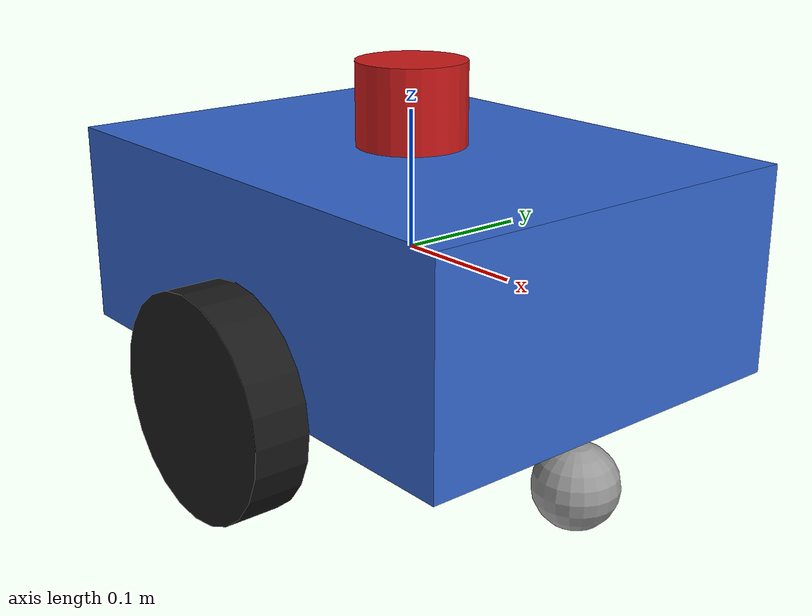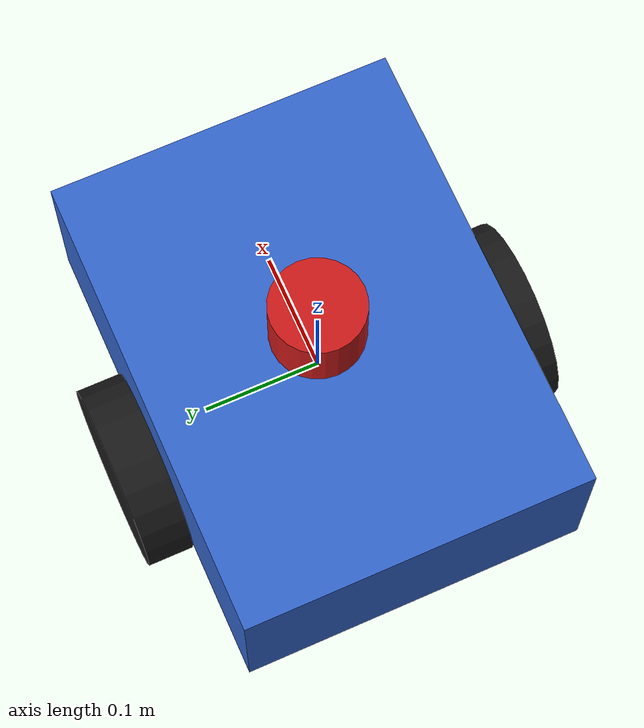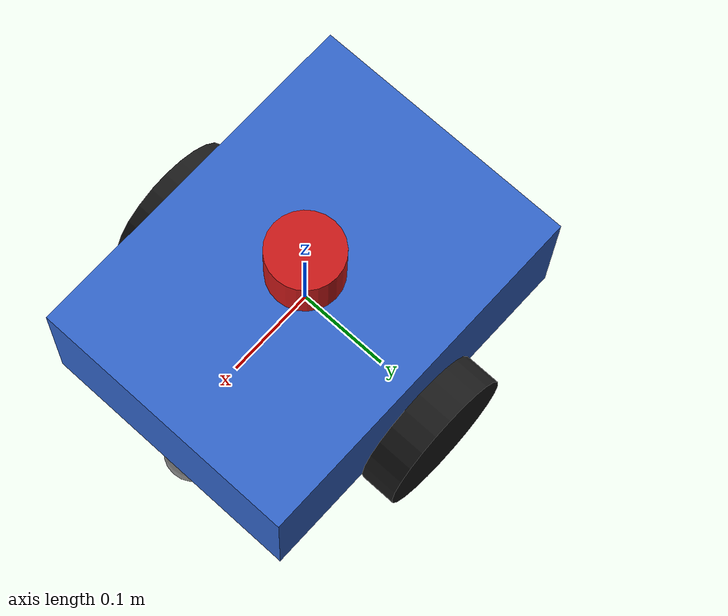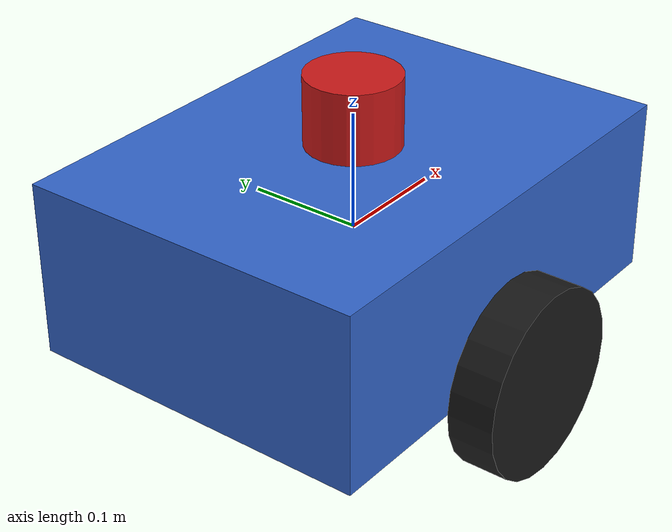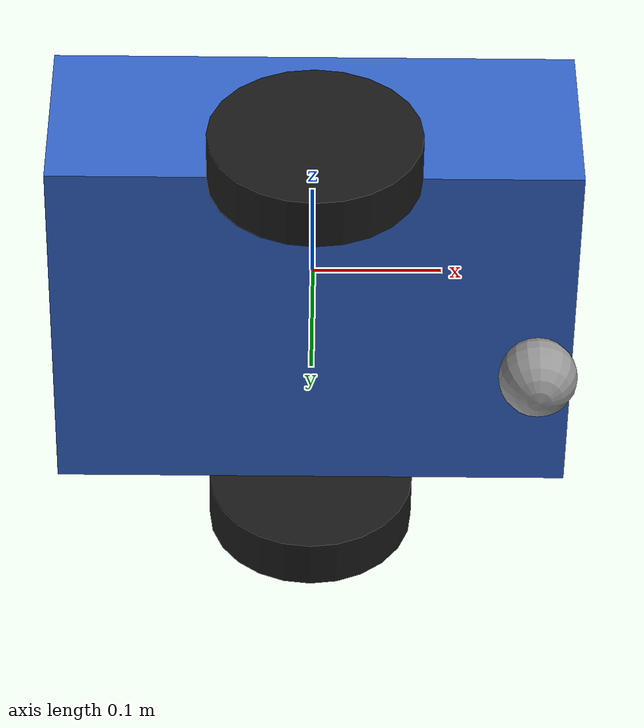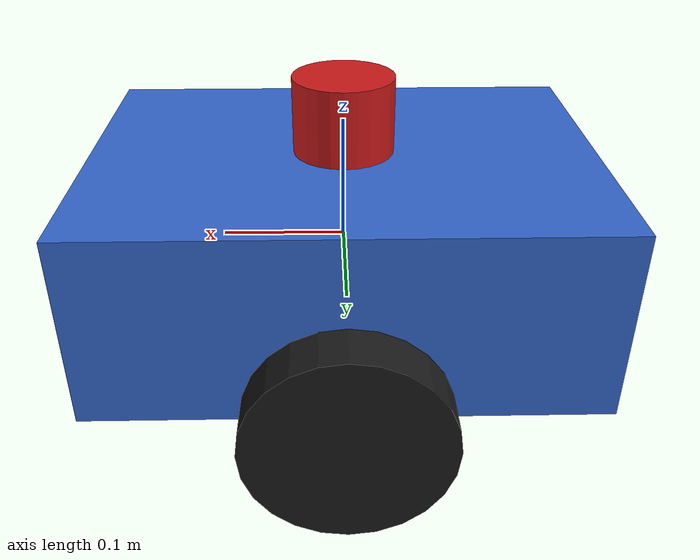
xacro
<?xml version="1.0"?>
<robot name="amr_bot" xmlns:xacro="http://www.ros.org/wiki/xacro">

  <!-- ==================== ROBOT DIMENSIONS ==================== -->
  <!-- Think of these like variables in Python — define once, use everywhere -->
  <xacro:property name="base_length"     value="0.4"/>   <!-- metres -->
  <xacro:property name="base_width"      value="0.3"/>
  <xacro:property name="base_height"     value="0.15"/>
  <xacro:property name="wheel_radius"    value="0.08"/>
  <xacro:property name="wheel_thickness" value="0.04"/>
  <xacro:property name="caster_radius"   value="0.03"/>
  <xacro:property name="robot_mass"      value="10.0"/>   <!-- kg -->
  <xacro:property name="wheel_mass"      value="0.5"/>

  <!-- ==================== BASE LINK ==================== -->
  <!-- This is the main robot body — everything connects to this -->
  <link name="base_link">

    <visual>
      <geometry>
        <box size="${base_length} ${base_width} ${base_height}"/>
      </geometry>
      <material name="blue">
        <color rgba="0.2 0.4 0.8 1.0"/>
      </material>
    </visual>

    <collision>
      <geometry>
        <box size="${base_length} ${base_width} ${base_height}"/>
      </geometry>
    </collision>

    <inertial>
      <mass value="${robot_mass}"/>
      <inertia
        ixx="${(1/12) * robot_mass * (base_width*base_width + base_height*base_height)}"
        iyy="${(1/12) * robot_mass * (base_length*base_length + base_height*base_height)}"
        izz="${(1/12) * robot_mass * (base_length*base_length + base_width*base_width)}"
        ixy="0" ixz="0" iyz="0"/>
    </inertial>

  </link>

  <!-- ==================== LEFT WHEEL ==================== -->
  <link name="left_wheel">
    <visual>
      <geometry>
        <cylinder radius="${wheel_radius}" length="${wheel_thickness}"/>
      </geometry>
      <material name="black">
        <color rgba="0.1 0.1 0.1 1.0"/>
      </material>
    </visual>
    <collision>
      <geometry>
        <cylinder radius="${wheel_radius}" length="${wheel_thickness}"/>
      </geometry>
    </collision>
    <inertial>
      <mass value="${wheel_mass}"/>
      <inertia
        ixx="${(1/12) * wheel_mass * (3*wheel_radius*wheel_radius + wheel_thickness*wheel_thickness)}"
        iyy="${(1/12) * wheel_mass * (3*wheel_radius*wheel_radius + wheel_thickness*wheel_thickness)}"
        izz="${(1/2) * wheel_mass * wheel_radius*wheel_radius}"
        ixy="0" ixz="0" iyz="0"/>
    </inertial>
  </link>

  <!-- Left wheel joint — continuous means it spins freely -->
  <joint name="left_wheel_joint" type="continuous">
    <parent link="base_link"/>
    <child  link="left_wheel"/>
    <!-- Position: halfway back, left side, at wheel height -->
    <origin xyz="0.0 ${base_width/2 + wheel_thickness/2} ${-base_height/2}" rpy="-1.5708 0 0"/>
    <axis xyz="0 0 1"/>
  </joint>

  <!-- ==================== RIGHT WHEEL ==================== -->
  <link name="right_wheel">
    <visual>
      <geometry>
        <cylinder radius="${wheel_radius}" length="${wheel_thickness}"/>
      </geometry>
      <material name="black">
        <color rgba="0.1 0.1 0.1 1.0"/>
      </material>
    </visual>
    <collision>
      <geometry>
        <cylinder radius="${wheel_radius}" length="${wheel_thickness}"/>
      </geometry>
    </collision>
    <inertial>
      <mass value="${wheel_mass}"/>
      <inertia
        ixx="${(1/12) * wheel_mass * (3*wheel_radius*wheel_radius + wheel_thickness*wheel_thickness)}"
        iyy="${(1/12) * wheel_mass * (3*wheel_radius*wheel_radius + wheel_thickness*wheel_thickness)}"
        izz="${(1/2) * wheel_mass * wheel_radius*wheel_radius}"
        ixy="0" ixz="0" iyz="0"/>
    </inertial>
  </link>

  <joint name="right_wheel_joint" type="continuous">
    <parent link="base_link"/>
    <child  link="right_wheel"/>
    <!-- Mirror of left wheel — negative Y side -->
    <origin xyz="0.0 ${-(base_width/2 + wheel_thickness/2)} ${-base_height/2}" rpy="-1.5708 0 0"/>
    <axis xyz="0 0 1"/>
  </joint>

  <!-- ==================== CASTER WHEEL ==================== -->
  <!-- Passive wheel — no motor, just supports the front of the robot -->
  <link name="caster_wheel">
    <visual>
      <geometry>
        <sphere radius="${caster_radius}"/>
      </geometry>
      <material name="grey">
        <color rgba="0.6 0.6 0.6 1.0"/>
      </material>
    </visual>
    <collision>
      <geometry>
        <sphere radius="${caster_radius}"/>
      </geometry>
    </collision>
    <inertial>
      <mass value="0.1"/>
      <inertia
        ixx="${(2/5) * 0.1 * caster_radius*caster_radius}"
        iyy="${(2/5) * 0.1 * caster_radius*caster_radius}"
        izz="${(2/5) * 0.1 * caster_radius*caster_radius}"
        ixy="0" ixz="0" iyz="0"/>
    </inertial>
  </link>

  <!-- Fixed joint — caster doesn't move relative to base -->
  <!-- Fixed joint — caster doesn't move relative to base -->
  <joint name="caster_joint" type="fixed">
      <parent link="base_link"/>
      <child  link="caster_wheel"/>
      <origin xyz="${base_length/2 - caster_radius} 0
          ${-base_height/2 - (wheel_radius - caster_radius)}" rpy="0 0 0"/>
  </joint>

  <!-- ==================== LIDAR ==================== -->
  <link name="lidar_link">
    <visual>
      <geometry>
        <cylinder radius="0.04" length="0.06"/>
      </geometry>
      <material name="red">
        <color rgba="0.8 0.1 0.1 1.0"/>
      </material>
    </visual>
    <collision>
      <geometry>
        <cylinder radius="0.04" length="0.06"/>
      </geometry>
    </collision>
    <inertial>
      <mass value="0.2"/>
      <inertia ixx="0.001" iyy="0.001" izz="0.001"
               ixy="0" ixz="0" iyz="0"/>
    </inertial>
  </link>

  <!-- Fixed joint — LiDAR sits on top of robot body -->
  <joint name="lidar_joint" type="fixed">
    <parent link="base_link"/>
    <child  link="lidar_link"/>
    <origin xyz="0 0 ${base_height/2 + 0.03}" rpy="0 0 0"/>
  </joint>

  <!-- ==================== GAZEBO PLUGINS ==================== -->

  <!-- Differential Drive Plugin -->
  <!-- This is what makes your robot actually move in simulation -->
  <gazebo>
    <plugin name="differential_drive_controller"
            filename="libgazebo_ros_diff_drive.so">

      <!-- Update rate in Hz -->
      <update_rate>50</update_rate>

      <!-- Wheel joints — must match your joint names exactly -->
      <left_joint>left_wheel_joint</left_joint>
      <right_joint>right_wheel_joint</right_joint>

      <!-- Robot geometry — must match your URDF values -->
      <wheel_separation>0.34</wheel_separation>  <!-- base_width + wheel_thickness -->
      <wheel_diameter>0.16</wheel_diameter>       <!-- 2 * wheel_radius -->

      <!-- Max wheel torque and acceleration -->
      <max_wheel_torque>20</max_wheel_torque>
      <max_wheel_acceleration>1.0</max_wheel_acceleration>

      <!-- Topics this plugin reads and publishes -->
      <command_topic>cmd_vel</command_topic>
      <odometry_topic>odom</odometry_topic>
      <odometry_frame>odom</odometry_frame>
      <robot_base_frame>base_link</robot_base_frame>

      <!-- Publish TF: odom → base_link -->
      <publish_odom>true</publish_odom>
      <publish_odom_tf>true</publish_odom_tf>
      <publish_wheel_tf>false</publish_wheel_tf>

    </plugin>
  </gazebo>

  <!-- LiDAR Ray Sensor Plugin -->
  <!-- This makes your LiDAR actually fire laser rays and publish /scan -->
  <gazebo reference="lidar_link">
    <sensor type="ray" name="lidar_sensor">

      <!-- Position of sensor within the link -->
      <pose>0 0 0 0 0 0</pose>
      <visualize>true</visualize>  <!-- Show laser rays in Gazebo -->
      <update_rate>10</update_rate>

      <ray>
        <scan>
          <horizontal>
            <samples>360</samples>        <!-- 360 laser rays -->
            <resolution>1</resolution>
            <min_angle>-3.14159</min_angle>  <!-- Full 360° sweep -->
            <max_angle>3.14159</max_angle>
          </horizontal>
        </scan>
        <range>
          <min>0.12</min>    <!-- Minimum detection range -->
          <max>10.0</max>    <!-- Maximum detection range -->
          <resolution>0.01</resolution>
        </range>
        <noise>
          <type>gaussian</type>
          <mean>0.0</mean>
          <stddev>0.01</stddev>   <!-- Small realistic noise -->
        </noise>
      </ray>

      <!-- ROS plugin that bridges sensor → /scan topic -->
      <plugin name="lidar_plugin" filename="libgazebo_ros_ray_sensor.so">
        <ros>
          <remapping>~/out:=scan</remapping>
        </ros>
        <output_type>sensor_msgs/LaserScan</output_type>
        <frame_name>lidar_link</frame_name>
      </plugin>

    </sensor>
  </gazebo>
  <!-- Remove friction from caster so it slides freely -->
  <gazebo reference="caster_wheel">
    <mu1>0.0</mu1>
    <mu2>0.0</mu2>
  </gazebo>
</robot>
